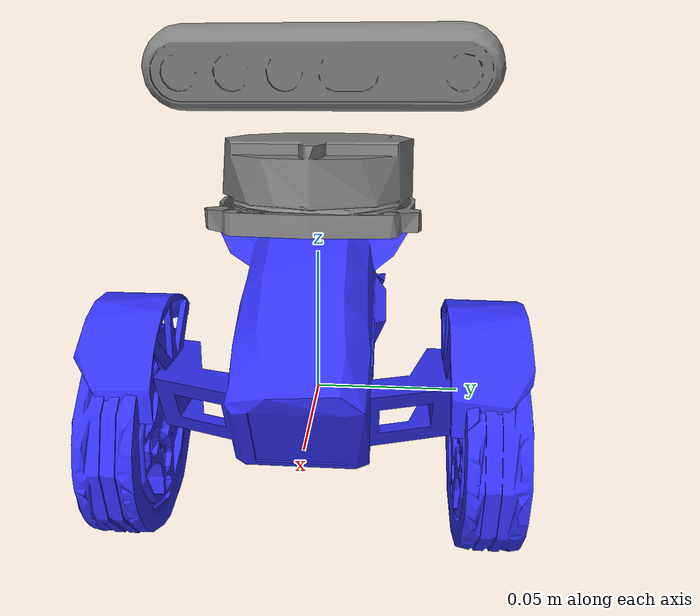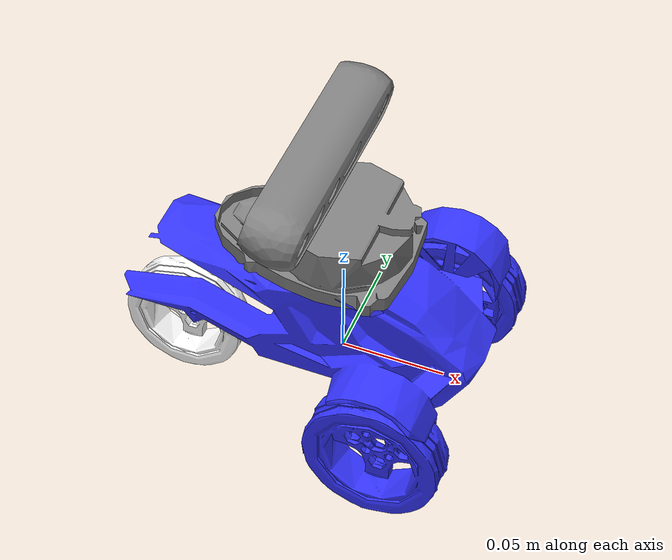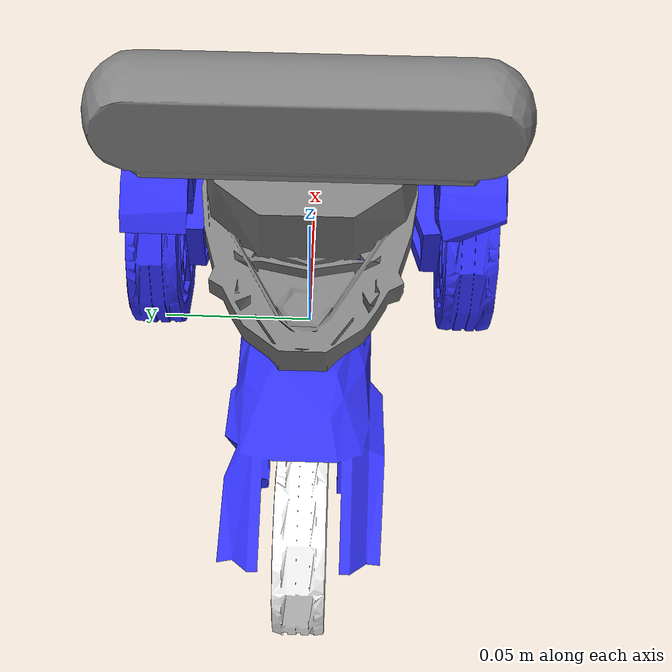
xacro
<?xml version="1.0" ?>
<robot name='robot' xmlns:xacro="http://ros.org/wiki/xacro">

    <xacro:include filename="$(find robot_description)/urdf/gazebo.urdf.xacro" />
    <xacro:include filename="$(find robot_description)/urdf/lidar.urdf.xacro" />
    <xacro:include filename="$(find robot_description)/urdf/depth.urdf.xacro" />

    <xacro:property name="M_PI" value="3.1415926535897931" />

    <xacro:property name="chassis_length" value="0.176"/>
    <xacro:property name="chassis_width" value="0.13"/>
    <xacro:property name="chassis_height" value="0.069"/>
    <xacro:property name="wheel_radius" value="0.033"/>
    <xacro:property name="wheel_thickness" value="0.018"/>
    <xacro:property name="wheel_mass" value="0.2"/>
    <xacro:property name="wheel_offset_x" value="0.0375"/>
    <xacro:property name="wheel_offset_y" value="0.055"/>
    <xacro:property name="wheel_offset_z" value="0.01"/>
    <xacro:property name="caster_wheel_radius" value="0.024"/>
    <xacro:property name="caster_wheel_mass" value="0.01"/>
    <xacro:property name="caster_wheel_offset_x" value="0.08"/>
    <xacro:property name="caster_wheel_offset_z" value="-0.05"/>
    <xacro:property name="mass" value="1.0"/>

    <material name="white">
        <color rgba="1 1 1 1" />
    </material>

    <material name="orange">
        <color rgba="1 0.3 0.1 1"/>
    </material>

    <material name="blue">
        <color rgba="0.2 0.2 1 1"/>
    </material>

    <material name="black">
        <color rgba="0 0 0 1"/>
    </material>

    <material name="red">
        <color rgba="1 0 0 1"/>
    </material>

    <link name="base_link" />
    <link name="base_footprint" />

    <joint name="base_footprint_joint" type="fixed">
        <parent link="base_link"/>
        <child link="base_footprint"/>
        <origin xyz="0 0 -0.03" rpy="0 0 0"/>
    </joint>

    <joint name="chassis_joint" type="fixed">
        <parent link="base_link"/>
        <child link="chassis"/>
        <origin xyz="0 0 0.04" rpy="0 0 ${M_PI}"/>
    </joint>

    <link name='chassis'>
        <inertial>
            <mass value="${mass}" />
            <inertia ixx="1e-3" ixy="0.0" ixz="0.0"
                     iyy="1e-3" iyz="0.0"
                     izz="1e-3" />
        </inertial>
        <visual>
            <geometry>
                <mesh filename="file://$(find robot_description)/urdf/body_center_sim.stl" scale="0.001 0.001 0.001"/>
            </geometry>
            <material name="blue"/>
        </visual>
        <collision>
            <geometry>
                <box size="${chassis_length} ${chassis_width} ${chassis_height}"/>
            </geometry>
        </collision>
    </link>

    <gazebo reference="chassis">
        <material>Gazebo/Orange</material>
    </gazebo>

    <joint name="left_wheel_joint" type="continuous">
        <parent link="base_link"/>
        <child link="left_wheel"/>
        <origin xyz="${wheel_offset_x} ${wheel_offset_y} 0" rpy="0 0 0" />
        <axis xyz="0 1 0"/>
    </joint>

    <link name="left_wheel">
        <visual>
            <geometry>
                <mesh filename="file://$(find robot_description)/urdf/left_tire_sim.stl" scale="0.001 0.001 0.001"/>
            </geometry>
            <material name="blue"/>
        </visual>
        <collision>
            <geometry>
                <sphere radius="${wheel_radius}"/>
            </geometry>
        </collision>
        <inertial>
            <origin xyz="0 0 0" rpy="0 0 0"/>
            <mass value="2.8498940e-02" />
            <inertia ixx="1.1175580e-05" ixy="-4.2369783e-11" ixz="-5.9381719e-09"
                     iyy="1.1192413e-05" iyz="-1.4400107e-11"
                     izz="2.0712558e-05" />
        </inertial>
    </link>

    <gazebo reference="left_wheel">
        <material>Gazebo/Blue</material>
    </gazebo>

    <joint name="right_wheel_joint" type="continuous">
        <parent link="base_link"/>
        <child link="right_wheel"/>
        <origin xyz="${wheel_offset_x} ${-wheel_offset_y} 0" rpy="0 0 0" />
        <axis xyz="0 1 0"/>
    </joint>

    <link name="right_wheel">
        <visual>
            <geometry>
                <mesh filename="file://$(find robot_description)/urdf/right_tire_sim.stl" scale="0.001 0.001 0.001"/>
            </geometry>
            <material name="blue"/>
        </visual>
        <collision>
            <geometry>
                <sphere radius="${wheel_radius}"/>
            </geometry>
        </collision>
        <inertial>
            <origin xyz="0 0 0" rpy="0 0 0"/>
            <mass value="2.8498940e-02" />
            <inertia ixx="1.1175580e-05" ixy="-4.2369783e-11" ixz="-5.9381719e-09"
                     iyy="1.1192413e-05" iyz="-1.4400107e-11"
                     izz="2.0712558e-05" />
        </inertial>
    </link>

    <gazebo reference="right_wheel">
        <material>Gazebo/Blue</material>
    </gazebo>

    <joint name="caster_wheel_joint" type="fixed">
        <parent link="chassis"/>
        <child link="caster_wheel"/>
        <origin xyz="${caster_wheel_offset_x} 0 ${caster_wheel_offset_z}"/>
    </joint>

    <link name="caster_wheel">
        <visual>
            <geometry>
                <mesh filename="file://$(find robot_description)/urdf/left_tire_sim.stl" scale="0.0009 0.0009 0.0009"/>
            </geometry>
            <material name="white"/>
        </visual>
        <collision>
            <geometry>
                <sphere radius="${caster_wheel_radius}"/>
            </geometry>
        </collision>
        <inertial>
            <origin xyz="0 0 0" rpy="0 0 0"/>
            <mass value="${caster_wheel_mass}" />
            <inertia ixx="${(2/5) * caster_wheel_mass * (caster_wheel_radius*caster_wheel_radius)}" ixy="0.0" ixz="0.0"
                     iyy="${(2/5) * caster_wheel_mass * (caster_wheel_radius*caster_wheel_radius)}" iyz="0.0"
                     izz="${(2/5) * caster_wheel_mass * (caster_wheel_radius*caster_wheel_radius)}" />
        </inertial>
    </link>

    <gazebo reference="caster_wheel">
        <mu1 value="0.001"/>
        <mu2 value="0.001"/>
        <material>Gazebo/White</material>
    </gazebo>

</robot>

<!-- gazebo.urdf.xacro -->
<robot xmlns:xacro="http://www.ros.org/wiki/xacro">

    <gazebo reference="imu_link">
        <sensor name="imu_sensor" type="imu">
            <gz_frame_id>robot/imu_link</gz_frame_id>
            <update_rate>50</update_rate>
            <visualize>false</visualize>
            <topic>imu</topic>
            <always_on>false</always_on>
        </sensor>
    </gazebo>

    <link name="imu_link" />

    <joint name="imu_link_joint" type="fixed">
        <parent link="base_link"/>
        <child link="imu_link"/>
    </joint>

    <gazebo>
        <plugin
            filename="gz-sim-joint-state-publisher-system"
            name="gz::sim::systems::JointStatePublisher">
        </plugin>

        <plugin
            filename="gz-sim-imu-system"
            name="gz::sim::systems::Imu">
        </plugin>

        <plugin
            filename="gz-sim-diff-drive-system"
            name="gz::sim::systems::DiffDrive">
            <left_joint>left_wheel_joint</left_joint>
            <right_joint>right_wheel_joint</right_joint>
            <child_frame_id>robot/base_link</child_frame_id>
            <wheel_separation>0.11</wheel_separation>
            <wheel_radius>0.033</wheel_radius>
            <odom_publish_frequency>50</odom_publish_frequency>
            <min_velocity>-1.0</min_velocity>
            <max_velocity>1.0</max_velocity>
            <min_acceleration>-0.3</min_acceleration>
            <max_acceleration>0.3</max_acceleration>
            <min_angular_acceleration>-1.0</min_angular_acceleration>
            <max_angular_acceleration>1.0</max_angular_acceleration>
        </plugin>

        <plugin
            filename="gz-sim-sensors-system"
            name="gz::sim::systems::Sensors">
            <render_engine>ogre2</render_engine>
        </plugin>
    </gazebo>

</robot>

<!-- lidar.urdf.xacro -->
<robot xmlns:xacro="http://www.ros.org/wiki/xacro">

    <xacro:property name="M_PI" value="3.1415926535897931" />

    <joint name="laser_joint" type="fixed">
        <parent link="base_link"/>
        <child link="laser_frame"/>
        <origin xyz="0.0 0 0.08" rpy="0 0 ${M_PI}"/>
    </joint>

    <link name="laser_frame">
        <visual>
            <geometry>
                <mesh filename="file://$(find robot_description)/urdf/lidar_sim.stl" scale="0.001 0.001 0.001"/>
            </geometry>
            <material name="aluminum"/>
        </visual>
        <collision>
            <geometry>
                <cylinder radius="0.05" length="0.04"/>
            </geometry>
        </collision>
        <inertial>
            <origin xyz="0 0 0" rpy="0 0 0"/>
            <mass value="0.1" />
            <inertia ixx="${(1/12) * 0.1 * (3*0.05*0.05 + 0.04*0.04)}" ixy="0.0" ixz="0.0"
                     iyy="${(1/12) * 0.1 * (3*0.05*0.05 + 0.04*0.04)}" iyz="0.0"
                     izz="${(1/2) * 0.1 * (0.05*0.05)}" />
        </inertial>
    </link>

    <gazebo reference="laser_frame">
        <material>Gazebo/Black</material>

        <sensor name='laser_sensor_frame' type='gpu_lidar'>"
            <gz_frame_id>robot/laser_frame</gz_frame_id>
            <pose> 0 0 0 0 0 0 </pose>
            <visualize>false</visualize>
            <always_on>false</always_on>
            <update_rate>10</update_rate>
            <ray>
                <scan>
                    <horizontal>
                        <samples>360</samples>
                        <min_angle>-3.14</min_angle>
                        <max_angle>3.14</max_angle>
                    </horizontal>
                </scan>
                <range>
                    <min>0.1</min>
                    <max>10</max>
                </range>
                <noise>
                    <type>gaussian</type>
                    <mean>0.0</mean>
                    <stddev>0.007</stddev>
                </noise>
            </ray>
        </sensor>
    </gazebo>
</robot>

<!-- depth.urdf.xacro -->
<robot xmlns:xacro="http://www.ros.org/wiki/xacro">

    <xacro:property name="M_PI" value="3.1415926535897931" />

    <joint name="depth_joint" type="fixed">
        <parent link="base_link"/>
        <child link="depth_frame"/>
        <origin xyz="0.0 0 0.11" rpy="0 0.2 0"/>
    </joint>

    <material name="aluminum">
      <color rgba="0.5 0.5 0.5 1"/>
    </material>

    <link name="depth_frame">
        <visual>
            <origin xyz="0 0 0" rpy="${M_PI/2} 0 ${M_PI/2}"/>
            <geometry>
                <mesh filename="file://$(find robot_description)/urdf/d455_sim.stl" scale="0.001 0.001 0.001"/>
            </geometry>
            <material name="aluminum"/>
        </visual>
        <collision>
            <origin xyz="0 0 0" rpy="${M_PI/2} 0 ${M_PI/2}"/>
            <geometry>
                <box size="0.026 0.124 0.029"/>
            </geometry>
        </collision>
        <inertial>
            <origin xyz="0 0 0" rpy="0 0 0"/>
            <mass value="0.116" />
            <inertia ixx="${(1/12) * 0.116 * (0.026*0.026+0.029*0.029)}" ixy="0.0" ixz="0.0"
                     iyy="${(1/12) * 0.116 * (0.124*0.124+0.029*0.029)}" iyz="0.0"
                     izz="${(1/12) * 0.116 * (0.124*0.124+0.026*0.026)}" />
        </inertial>
    </link>

    <gazebo reference="depth_frame">
        <sensor name='depth_sensor_frame' type='depth_camera'>"
            <gz_frame_id>robot/depth_frame</gz_frame_id>
            <pose> 0 0 0 0 0 0 </pose>
            <always_on>false</always_on>
            <update_rate>10</update_rate>
            <camera>
                <horizontal_fov>1.51843645</horizontal_fov>
                <image>
                    <width>848</width>
                    <height>480</height>
                    <format>R_FLOAT32</format>
                </image>
                <clip>
                    <near>0.1</near>
                    <far>10</far>
                </clip>
                <noise>
                    <type>gaussian</type>
                    <mean>0.0</mean>
                    <stddev>0.007</stddev>
                </noise>
            </camera>
        </sensor>
        <sensor name="color_sensor_frame" type="camera">
            <gz_frame_id>robot/depth_frame</gz_frame_id>
            <pose>0 0 0 0 0 0</pose>
            <update_rate>30</update_rate>
            <always_on>false</always_on>
            <camera>
                <horizontal_fov>1.51843645</horizontal_fov>
                <image>
                    <width>848</width>
                    <height>480</height>
                </image>
                <clip>
                    <near>0.1</near>
                    <far>50</far>
                </clip>
                <noise>
                    <type>gaussian</type>
                    <mean>0.0</mean>
                    <stddev>0.007</stddev>
                </noise>
            </camera>
        </sensor>
    </gazebo>
</robot>
